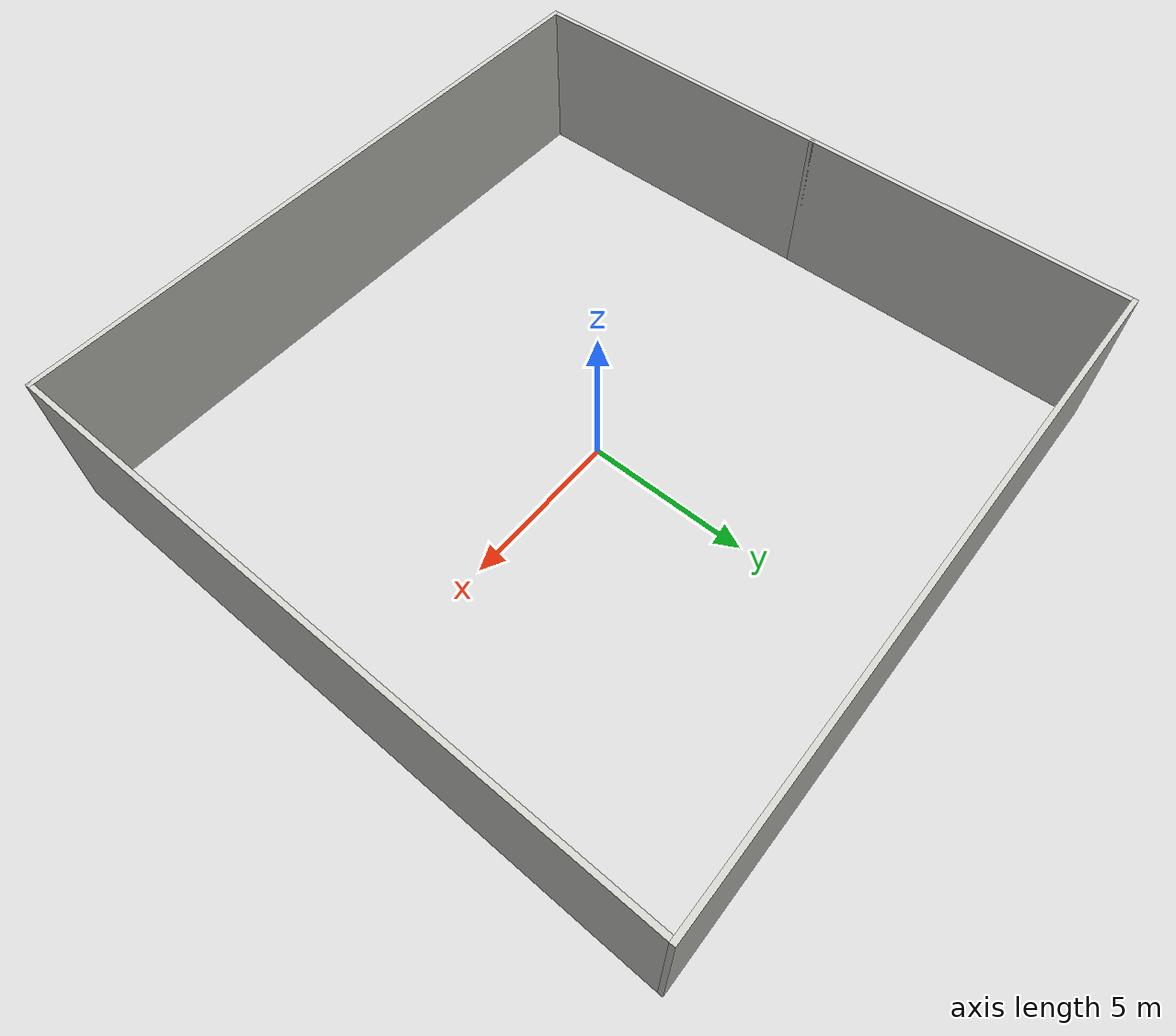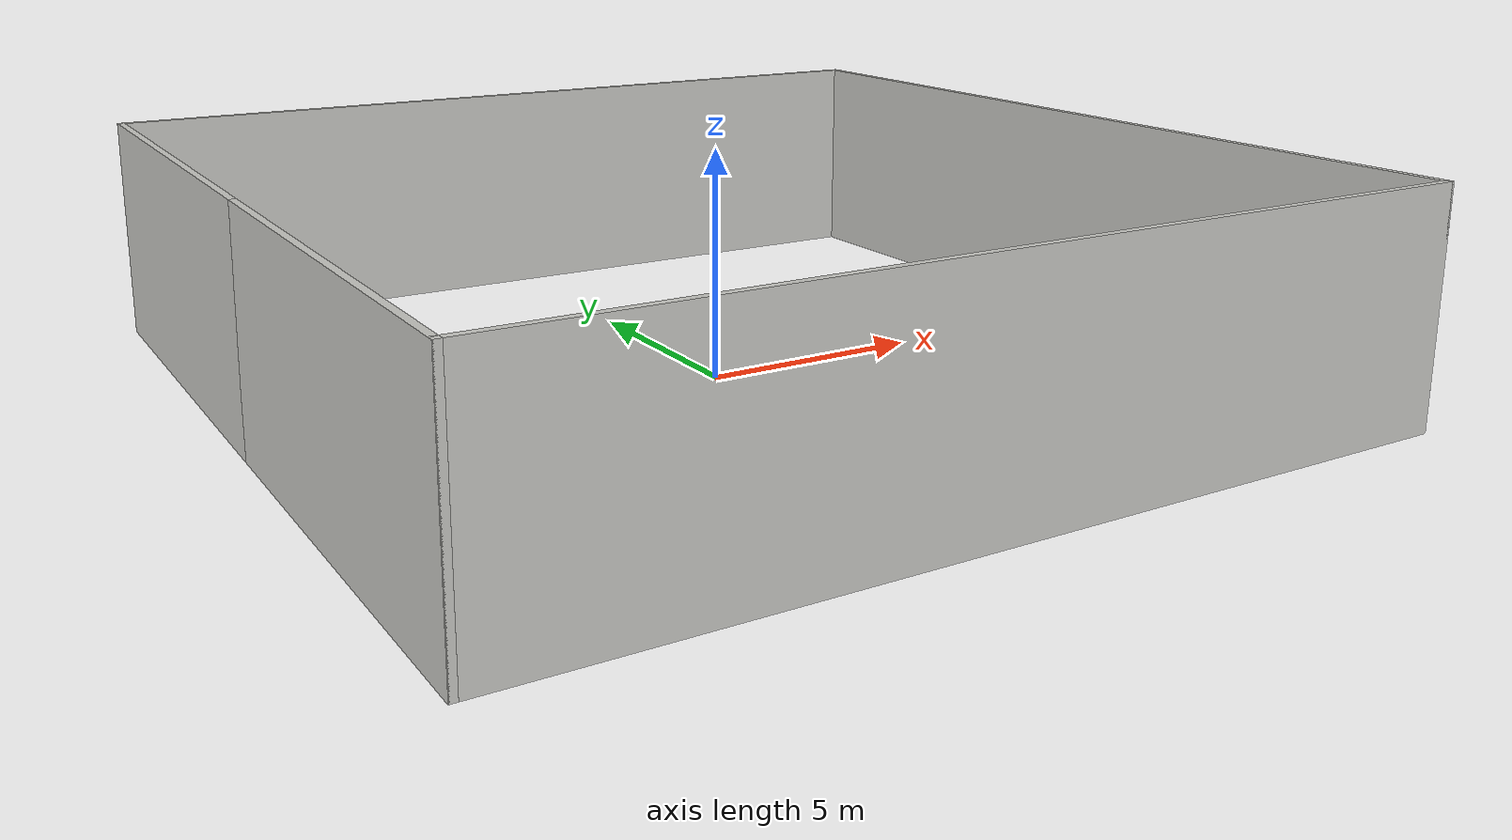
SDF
<?xml version='1.0'?>
<sdf version='1.7'>
  <model name='Sample_world'>
    <pose>0 0 0 0 -0 0</pose>
    <link name='Wall_0'>
      <collision name='Wall_0_Collision'>
        <geometry>
          <box>
            <size>10.15 0.15 5</size>
          </box>
        </geometry>
        <pose>0 0 2.5 0 -0 0</pose>
      </collision>
      <visual name='Wall_0_Visual'>
        <pose>0 0 2.5 0 -0 0</pose>
        <geometry>
          <box>
            <size>10.15 0.15 5</size>
          </box>
        </geometry>
        <material>
          <script>
            <uri>file://media/materials/scripts/gazebo.material</uri>
            <name>Gazebo/CeilingTiled</name>
          </script>
          <ambient>1 1 1 1</ambient>
        </material>
        <meta>
          <layer>0</layer>
        </meta>
      </visual>
      <pose>-10 5 0 0 -0 1.5708</pose>
    </link>
    <link name='Wall_11'>
      <collision name='Wall_11_Collision'>
        <geometry>
          <box>
            <size>20 0.15 5</size>
          </box>
        </geometry>
        <pose>0 0 2.5 0 -0 0</pose>
      </collision>
      <visual name='Wall_11_Visual'>
        <pose>0 0 2.5 0 -0 0</pose>
        <geometry>
          <box>
            <size>20 0.15 5</size>
          </box>
        </geometry>
        <material>
          <script>
            <uri>file://media/materials/scripts/gazebo.material</uri>
            <name>Gazebo/CeilingTiled</name>
          </script>
          <ambient>1 1 1 1</ambient>
        </material>
        <meta>
          <layer>0</layer>
        </meta>
      </visual>
      <pose>10 -0.075 0 0 -0 1.5708</pose>
    </link>
    <link name='Wall_13'>
      <collision name='Wall_13_Collision'>
        <geometry>
          <box>
            <size>20.15 0.15 5</size>
          </box>
        </geometry>
        <pose>0 0 2.5 0 -0 0</pose>
      </collision>
      <visual name='Wall_13_Visual'>
        <pose>0 0 2.5 0 -0 0</pose>
        <geometry>
          <box>
            <size>20.15 0.15 5</size>
          </box>
        </geometry>
        <material>
          <script>
            <uri>file://media/materials/scripts/gazebo.material</uri>
            <name>Gazebo/CeilingTiled</name>
          </script>
          <ambient>1 1 1 1</ambient>
        </material>
        <meta>
          <layer>0</layer>
        </meta>
      </visual>
      <pose>0 10 0 0 -0 0</pose>
    </link>
    <link name='Wall_6'>
      <collision name='Wall_6_Collision'>
        <geometry>
          <box>
            <size>10.15 0.15 5</size>
          </box>
        </geometry>
        <pose>0 0 2.5 0 -0 0</pose>
      </collision>
      <visual name='Wall_6_Visual'>
        <pose>0 0 2.5 0 -0 0</pose>
        <geometry>
          <box>
            <size>10.15 0.15 5</size>
          </box>
        </geometry>
        <material>
          <script>
            <uri>file://media/materials/scripts/gazebo.material</uri>
            <name>Gazebo/CeilingTiled</name>
          </script>
          <ambient>1 1 1 1</ambient>
        </material>
        <meta>
          <layer>0</layer>
        </meta>
      </visual>
      <pose>-10 -5 0 0 -0 -1.5708</pose>
    </link>
    <link name='Wall_7'>
      <collision name='Wall_7_Collision'>
        <geometry>
          <box>
            <size>20.15 0.15 5</size>
          </box>
        </geometry>
        <pose>0 0 2.5 0 -0 0</pose>
      </collision>
      <visual name='Wall_7_Visual'>
        <pose>0 0 2.5 0 -0 0</pose>
        <geometry>
          <box>
            <size>20.15 0.15 5</size>
          </box>
        </geometry>
        <material>
          <script>
            <uri>file://media/materials/scripts/gazebo.material</uri>
            <name>Gazebo/CeilingTiled</name>
          </script>
          <ambient>1 1 1 1</ambient>
        </material>
        <meta>
          <layer>0</layer>
        </meta>
      </visual>
      <pose>0 -10 0 0 -0 0</pose>
    </link>
    <static>1</static>
  </model>
</sdf>
